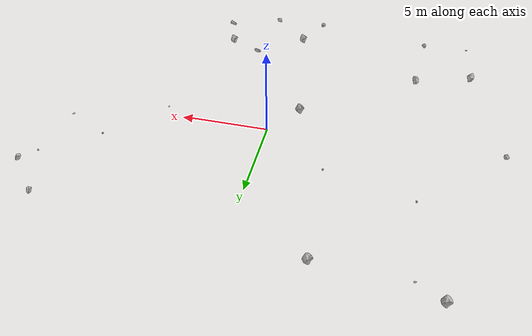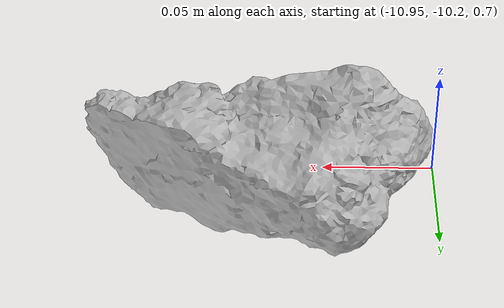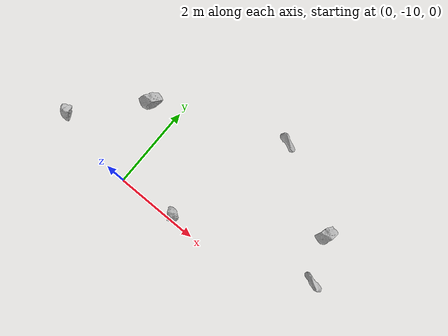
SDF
<sdf version="1.7">
 <world name="marsyard">
  <gravity>0 0 -9.81</gravity>
  <physics name="dart_physics" type="ignored">
   <max_step_size>0.003</max_step_size>
   <real_time_update_rate>333</real_time_update_rate>
   <real_time_factor>1.0</real_time_factor>
  </physics>
  <plugin filename="ignition-gazebo-physics-system" name="ignition::gazebo::systems::Physics"/>
  <plugin filename="ignition-gazebo-user-commands-system" name="ignition::gazebo::systems::UserCommands"/>
  <plugin filename="ignition-gazebo-scene-broadcaster-system" name="ignition::gazebo::systems::SceneBroadcaster"/>
  <plugin filename="ignition-gazebo-contact-system" name="ignition::gazebo::systems::Contact"/>
  <plugin filename="ignition-gazebo-sensors-system" name="ignition::gazebo::systems::Sensors">
   <render_engine>ogre2</render_engine>
  </plugin>
  <plugin filename="ignition-gazebo-imu-system" name="ignition::gazebo::systems::Imu"/>
  <plugin filename="ignition-gazebo-magnetometer-system" name="ignition::gazebo::systems::Magnetometer"/>
  <scene>
   <ambient>0.95 0.95 0.95 1</ambient>
   <background>0.70 0.70 0.70 1</background>
   <shadows>false</shadows>
  </scene>
  <light type="directional" name="sun">
   <cast_shadows>false</cast_shadows>
   <pose>0 0 30 0 0 0</pose>
   <diffuse>1 1 1 1</diffuse>
   <specular>0.15 0.15 0.15 1</specular>
   <direction>-0.35 0.1 -0.93</direction>
  </light>
  <model name="Rock_1">
   <static>true</static>
   <pose>4.3751 -8.2113 0.6617 0.0000 0.0000 1.3232</pose>
   <link name="link">
    <visual name="visual">
     <geometry><mesh><uri>package://rock_generator/rocks_ws/rock_1/meshes/rock_1.obj</uri></mesh></geometry>
    </visual>
    <collision name="collision">
     <geometry><mesh><uri>package://rock_generator/rocks_ws/rock_1/meshes/rock_1.obj</uri></mesh></geometry>
    </collision>
   </link>
  </model>
  <model name="Rock_2">
   <static>true</static>
   <pose>-12.8515 0.2995 0.8588 0.0000 0.0000 -0.0459</pose>
   <link name="link">
    <visual name="visual">
     <geometry><mesh><uri>package://rock_generator/rocks_ws/rock_3/meshes/rock_3.obj</uri></mesh></geometry>
    </visual>
   </link>
  </model>
  <model name="Rock_8">
   <static>true</static>
   <pose>10.2297 2.8108 1.4233 0.0000 0.0000 -2.5227</pose>
   <link name="link">
    <visual name="visual">
     <geometry><mesh><uri>package://rock_generator/rocks_ws/rock_6/meshes/rock_6.obj</uri></mesh></geometry>
    </visual>
   </link>
  </model>
  <model name="Rock_9">
   <static>true</static>
   <pose>-10.8731 -10.1752 0.7273 0.0000 0.0000 -0.2428</pose>
   <link name="link">
    <visual name="visual">
     <geometry><mesh><uri>package://rock_generator/rocks_ws/rock_6/meshes/rock_6.obj</uri></mesh></geometry>
    </visual>
   </link>
  </model>
  <model name="Rock_12">
   <static>true</static>
   <pose>1.4391 -9.9623 1.5007 0.0000 0.0000 -0.9542</pose>
   <link name="link">
    <visual name="visual">
     <geometry><mesh><uri>package://rock_generator/rocks_ws/rock_3/meshes/rock_3.obj</uri></mesh></geometry>
    </visual>
    <collision name="collision">
     <geometry><mesh><uri>package://rock_generator/rocks_ws/rock_3/meshes/rock_3.obj</uri></mesh></geometry>
    </collision>
   </link>
  </model>
  <model name="Rock_13">
   <static>true</static>
   <pose>-4.0496 9.3641 0.9868 0.0000 0.0000 0.7857</pose>
   <link name="link">
    <visual name="visual">
     <geometry><mesh><uri>package://rock_generator/rocks_ws/rock_1/meshes/rock_1.obj</uri></mesh></geometry>
    </visual>
   </link>
  </model>
  <model name="Rock_15">
   <static>true</static>
   <pose>-3.8227 3.9244 1.2351 0.0000 0.0000 2.7107</pose>
   <link name="link">
    <visual name="visual">
     <geometry><mesh><uri>package://rock_generator/rocks_ws/rock_9/meshes/rock_9.obj</uri></mesh></geometry>
    </visual>
   </link>
  </model>
  <model name="Rock_16">
   <static>true</static>
   <pose>10.4765 6.1314 1.5198 0.0000 0.0000 -1.3508</pose>
   <link name="link">
    <visual name="visual">
     <geometry><mesh><uri>package://rock_generator/rocks_ws/rock_9/meshes/rock_9.obj</uri></mesh></geometry>
    </visual>
    <collision name="collision">
     <geometry><mesh><uri>package://rock_generator/rocks_ws/rock_9/meshes/rock_9.obj</uri></mesh></geometry>
    </collision>
   </link>
  </model>
  <model name="Rock_17">
   <static>true</static>
   <pose>-9.9931 10.2051 0.9976 0.0000 0.0000 0.3617</pose>
   <link name="link">
    <visual name="visual">
     <geometry><mesh><uri>package://rock_generator/rocks_ws/rock_1/meshes/rock_1.obj</uri></mesh></geometry>
    </visual>
   </link>
  </model>
  <model name="Rock_18">
   <static>true</static>
   <pose>-0.2910 -8.4248 1.2041 0.0000 0.0000 1.1710</pose>
   <link name="link">
    <visual name="visual">
     <geometry><mesh><uri>package://rock_generator/rocks_ws/rock_1/meshes/rock_1.obj</uri></mesh></geometry>
    </visual>
   </link>
  </model>
  <model name="Rock_19">
   <static>true</static>
   <pose>10.9805 7.0805 1.6618 0.0000 0.0000 -2.3859</pose>
   <link name="link">
    <visual name="visual">
     <geometry><mesh><uri>package://rock_generator/rocks_ws/rock_3/meshes/rock_3.obj</uri></mesh></geometry>
    </visual>
   </link>
  </model>
  <model name="Rock_20">
   <static>true</static>
   <pose>4.5289 -9.2200 1.3100 0.0000 0.0000 -0.3577</pose>
   <link name="link">
    <visual name="visual">
     <geometry><mesh><uri>package://rock_generator/rocks_ws/rock_4/meshes/rock_4.obj</uri></mesh></geometry>
    </visual>
    <collision name="collision">
     <geometry><mesh><uri>package://rock_generator/rocks_ws/rock_4/meshes/rock_4.obj</uri></mesh></geometry>
    </collision>
   </link>
  </model>
  <model name="Rock_22">
   <static>true</static>
   <pose>-8.7141 9.6117 0.9799 0.0000 0.0000 -2.8656</pose>
   <link name="link">
    <visual name="visual">
     <geometry><mesh><uri>package://rock_generator/rocks_ws/rock_6/meshes/rock_6.obj</uri></mesh></geometry>
    </visual>
   </link>
  </model>
  <model name="Rock_23">
   <static>true</static>
   <pose>-1.3999 -9.6450 1.6260 0.0000 0.0000 1.9489</pose>
   <link name="link">
    <visual name="visual">
     <geometry><mesh><uri>package://rock_generator/rocks_ws/rock_3/meshes/rock_3.obj</uri></mesh></geometry>
    </visual>
    <collision name="collision">
     <geometry><mesh><uri>package://rock_generator/rocks_ws/rock_3/meshes/rock_3.obj</uri></mesh></geometry>
    </collision>
   </link>
  </model>
  <model name="Rock_24">
   <static>true</static>
   <pose>-8.4902 5.1277 1.2537 0.0000 0.0000 1.8036</pose>
   <link name="link">
    <visual name="visual">
     <geometry><mesh><uri>package://rock_generator/rocks_ws/rock_9/meshes/rock_9.obj</uri></mesh></geometry>
    </visual>
    <collision name="collision">
     <geometry><mesh><uri>package://rock_generator/rocks_ws/rock_9/meshes/rock_9.obj</uri></mesh></geometry>
    </collision>
   </link>
  </model>
  <model name="Rock_25">
   <static>true</static>
   <pose>-1.5928 -1.1034 1.0288 0.0000 0.0000 0.7428</pose>
   <link name="link">
    <visual name="visual">
     <geometry><mesh><uri>package://rock_generator/rocks_ws/rock_1/meshes/rock_1.obj</uri></mesh></geometry>
    </visual>
   </link>
  </model>
  <model name="Rock_26">
   <static>true</static>
   <pose>-7.7180 -5.1289 1.1963 0.0000 0.0000 2.0635</pose>
   <link name="link">
    <visual name="visual">
     <geometry><mesh><uri>package://rock_generator/rocks_ws/rock_1/meshes/rock_1.obj</uri></mesh></geometry>
    </visual>
    <collision name="collision">
     <geometry><mesh><uri>package://rock_generator/rocks_ws/rock_1/meshes/rock_1.obj</uri></mesh></geometry>
    </collision>
   </link>
  </model>
  <model name="Rock_27">
   <static>true</static>
   <pose>5.5088 0.6656 1.1846 0.0000 0.0000 -0.7571</pose>
   <link name="link">
    <visual name="visual">
     <geometry><mesh><uri>package://rock_generator/rocks_ws/rock_6/meshes/rock_6.obj</uri></mesh></geometry>
    </visual>
    <collision name="collision">
     <geometry><mesh><uri>package://rock_generator/rocks_ws/rock_6/meshes/rock_6.obj</uri></mesh></geometry>
    </collision>
   </link>
  </model>
  <model name="Rock_28">
   <static>true</static>
   <pose>-8.0996 -9.6109 1.0390 0.0000 0.0000 0.7223</pose>
   <link name="link">
    <visual name="visual">
     <geometry><mesh><uri>package://rock_generator/rocks_ws/rock_3/meshes/rock_3.obj</uri></mesh></geometry>
    </visual>
   </link>
  </model>
  <model name="Rock_29">
   <static>true</static>
   <pose>2.3991 -7.0344 0.6974 0.0000 0.0000 2.7194</pose>
   <link name="link">
    <visual name="visual">
     <geometry><mesh><uri>package://rock_generator/rocks_ws/rock_4/meshes/rock_4.obj</uri></mesh></geometry>
    </visual>
    <collision name="collision">
     <geometry><mesh><uri>package://rock_generator/rocks_ws/rock_4/meshes/rock_4.obj</uri></mesh></geometry>
    </collision>
   </link>
  </model>
  <model name="Rock_30">
   <static>true</static>
   <pose>7.5915 4.5558 1.9098 0.0000 0.0000 2.7929</pose>
   <link name="link">
    <visual name="visual">
     <geometry><mesh><uri>package://rock_generator/rocks_ws/rock_9/meshes/rock_9.obj</uri></mesh></geometry>
    </visual>
   </link>
  </model>
  <model name="Rock_31">
   <static>true</static>
   <pose>-11.1780 -6.6047 0.9779 0.0000 0.0000 -0.9224</pose>
   <link name="link">
    <visual name="visual">
     <geometry><mesh><uri>package://rock_generator/rocks_ws/rock_1/meshes/rock_1.obj</uri></mesh></geometry>
    </visual>
   </link>
  </model>
  <model name="Rock_32">
   <static>true</static>
   <pose>9.5790 8.6007 1.1670 0.0000 0.0000 -1.7759</pose>
   <link name="link">
    <visual name="visual">
     <geometry><mesh><uri>package://rock_generator/rocks_ws/rock_3/meshes/rock_3.obj</uri></mesh></geometry>
    </visual>
    <collision name="collision">
     <geometry><mesh><uri>package://rock_generator/rocks_ws/rock_3/meshes/rock_3.obj</uri></mesh></geometry>
    </collision>
   </link>
  </model>
 </world>
</sdf>
